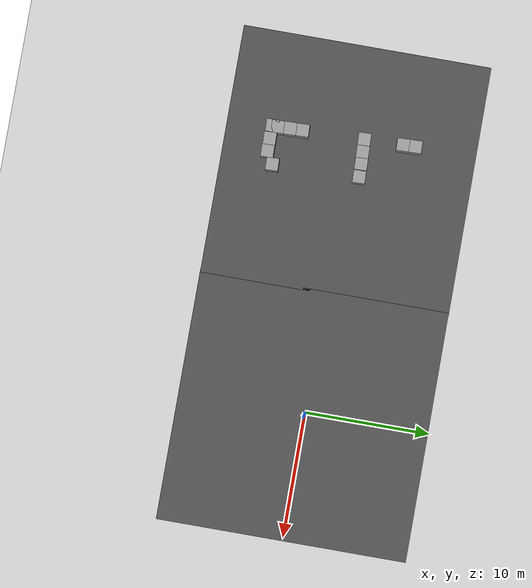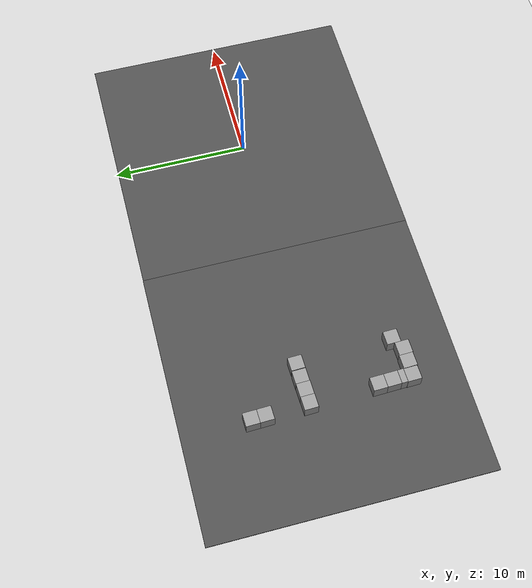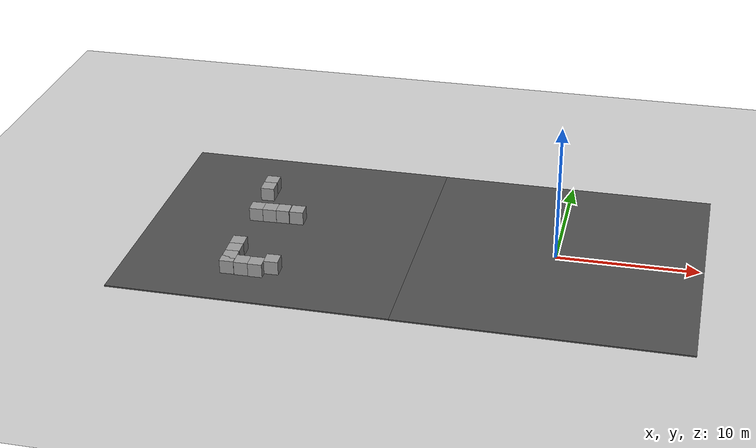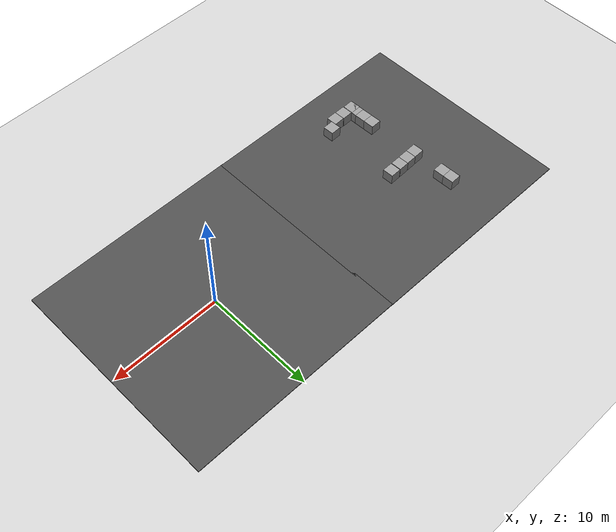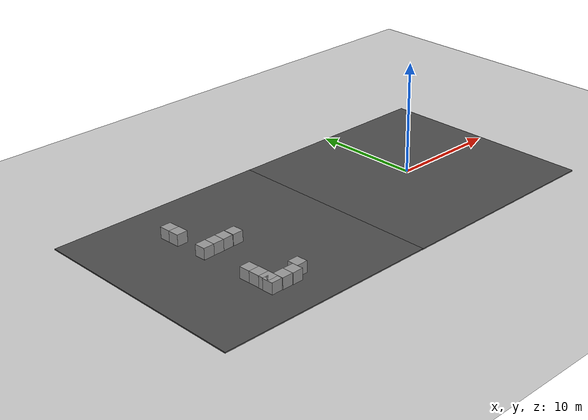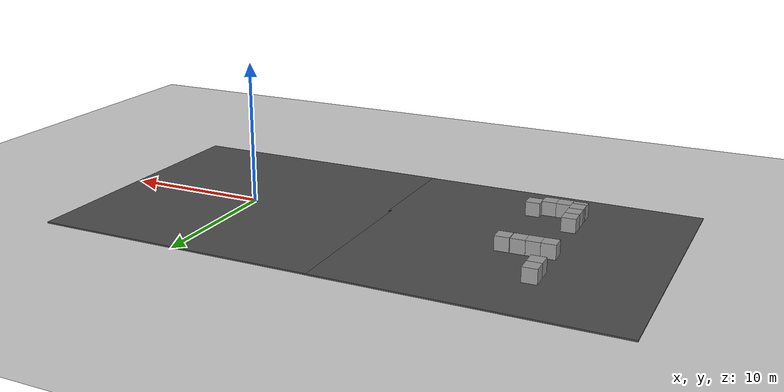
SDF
<sdf version="1.6">
 <world name="default">
  <model name="ground_plane">
   <static>1</static>
   <link name="link">
    <collision name="collision">
     <geometry><plane><normal>0 0 1</normal><size>100 100</size></plane></geometry>
     <surface><friction><ode><mu>100</mu><mu2>50</mu2></ode></friction></surface>
    </collision>
    <visual name="visual">
     <cast_shadows>0</cast_shadows>
     <geometry><plane><normal>0 0 1</normal><size>100 100</size></plane></geometry>
     <material>
      <script><uri>file://media/materials/scripts/gazebo.material</uri><name>Gazebo/Grey</name></script>
     </material>
    </visual>
    <velocity_decay><linear>0</linear><angular>0</angular></velocity_decay>
   </link>
  </model>
  <model name="asphalt_plane">
   <static>1</static>
   <link name="link">
    <collision name="collision"><geometry><box><size>20 20 0.1</size></box></geometry></collision>
    <visual name="visual">
     <cast_shadows>0</cast_shadows>
     <geometry><box><size>20 20 0.1</size></box></geometry>
     <material>
      <script>
       <uri>model://asphalt_plane/materials/scripts</uri>
       <uri>model://asphalt_plane/materials/textures</uri>
       <name>vrc/asphalt</name>
      </script>
     </material>
    </visual>
    <velocity_decay><linear>0</linear><angular>0</angular></velocity_decay>
   </link>
   <pose>0.276446 -0.119478 0 0 -0 0</pose>
  </model>
  <model name="asphalt_plane_clone">
   <static>1</static>
   <link name="link">
    <collision name="collision"><geometry><box><size>20 20 0.1</size></box></geometry></collision>
    <visual name="visual">
     <cast_shadows>0</cast_shadows>
     <geometry><box><size>20 20 0.1</size></box></geometry>
     <material>
      <script>
       <uri>model://asphalt_plane/materials/scripts</uri>
       <uri>model://asphalt_plane/materials/textures</uri>
       <name>vrc/asphalt</name>
      </script>
     </material>
    </visual>
    <velocity_decay><linear>0</linear><angular>0</angular></velocity_decay>
   </link>
   <pose>-19.5368 -0.102889 0 0 -0 0</pose>
  </model>
  <model name="maze">
   <link name="link">
    <inertial>
     <mass>10</mass>
     <inertia>
      <ixx>0.166667</ixx>
      <ixy>0</ixy>
      <ixz>0</ixz>
      <iyy>0.166667</iyy>
      <iyz>0</iyz>
      <izz>0.166667</izz>
     </inertia>
    </inertial>
    <visual name="visual">
     <geometry><box><size>1 1 1</size></box></geometry>
     <material>
      <script><name>Gazebo/Grey</name><uri>file://media/materials/scripts/gazebo.material</uri></script>
      <ambient>0.3 0.3 0.3 1</ambient>
      <diffuse>0.7 0.7 0.7 1</diffuse>
      <specular>0.01 0.01 0.01 1</specular>
      <emissive>0 0 0 1</emissive>
      <shader type="vertex"><normal_map>__default__</normal_map></shader>
     </material>
    </visual>
    <collision name="collision">
     <geometry><box><size>1 1 1</size></box></geometry>
     <surface>
      <friction>
       <ode><mu>1</mu><mu2>1</mu2><fdir1>0 0 0</fdir1><slip1>0</slip1><slip2>0</slip2></ode>
       <torsional>
        <coefficient>1</coefficient>
        <patch_radius>0</patch_radius>
        <surface_radius>0</surface_radius>
        <use_patch_radius>1</use_patch_radius>
        <ode><slip>0</slip></ode>
       </torsional>
      </friction>
      <bounce><restitution_coefficient>0</restitution_coefficient><threshold>1e+06</threshold></bounce>
      <contact>
       <collide_without_contact>0</collide_without_contact>
       <collide_without_contact_bitmask>1</collide_without_contact_bitmask>
       <collide_bitmask>1</collide_bitmask>
       <ode>
        <soft_cfm>0</soft_cfm>
        <soft_erp>0.2</soft_erp>
        <kp>1e+13</kp>
        <kd>1</kd>
        <max_vel>0.01</max_vel>
        <min_depth>0</min_depth>
       </ode>
       <bullet>
        <split_impulse>1</split_impulse>
        <split_impulse_penetration_threshold>-0.01</split_impulse_penetration_threshold>
        <soft_cfm>0</soft_cfm>
        <soft_erp>0.2</soft_erp>
        <kp>1e+13</kp>
        <kd>1</kd>
       </bullet>
      </contact>
     </surface>
    </collision>
   </link>
   <link name="link_clone_0">
    <pose>0.025298 0.43991 0 0 -0 0</pose>
    <inertial>
     <mass>10</mass>
     <inertia>
      <ixx>0.166667</ixx>
      <ixy>0</ixy>
      <ixz>0</ixz>
      <iyy>0.166667</iyy>
      <iyz>0</iyz>
      <izz>0.166667</izz>
     </inertia>
    </inertial>
    <visual name="visual">
     <geometry><box><size>1 1 1</size></box></geometry>
     <material>
      <script><name>Gazebo/Grey</name><uri>file://media/materials/scripts/gazebo.material</uri></script>
      <ambient>0.3 0.3 0.3 1</ambient>
      <diffuse>0.7 0.7 0.7 1</diffuse>
      <specular>0.01 0.01 0.01 1</specular>
      <emissive>0 0 0 1</emissive>
      <shader type="vertex"><normal_map>__default__</normal_map></shader>
     </material>
    </visual>
    <collision name="collision">
     <geometry><box><size>1 1 1</size></box></geometry>
     <surface>
      <friction>
       <ode><mu>1</mu><mu2>1</mu2><fdir1>0 0 0</fdir1><slip1>0</slip1><slip2>0</slip2></ode>
       <torsional>
        <coefficient>1</coefficient>
        <patch_radius>0</patch_radius>
        <surface_radius>0</surface_radius>
        <use_patch_radius>1</use_patch_radius>
        <ode><slip>0</slip></ode>
       </torsional>
      </friction>
      <bounce><restitution_coefficient>0</restitution_coefficient><threshold>1e+06</threshold></bounce>
      <contact>
       <collide_without_contact>0</collide_without_contact>
       <collide_without_contact_bitmask>1</collide_without_contact_bitmask>
       <collide_bitmask>1</collide_bitmask>
       <ode>
        <soft_cfm>0</soft_cfm>
        <soft_erp>0.2</soft_erp>
        <kp>1e+13</kp>
        <kd>1</kd>
        <max_vel>0.01</max_vel>
        <min_depth>0</min_depth>
       </ode>
       <bullet>
        <split_impulse>1</split_impulse>
        <split_impulse_penetration_threshold>-0.01</split_impulse_penetration_threshold>
        <soft_cfm>0</soft_cfm>
        <soft_erp>0.2</soft_erp>
        <kp>1e+13</kp>
        <kd>1</kd>
       </bullet>
      </contact>
     </surface>
    </collision>
   </link>
   <link name="link_clone_0_clone">
    <pose>1.0253 -0.048934 -0 0 -0 0</pose>
    <inertial>
     <mass>10</mass>
     <inertia>
      <ixx>0.166667</ixx>
      <ixy>0</ixy>
      <ixz>0</ixz>
      <iyy>0.166667</iyy>
      <iyz>0</iyz>
      <izz>0.166667</izz>
     </inertia>
    </inertial>
    <visual name="visual">
     <geometry><box><size>1 1 1</size></box></geometry>
     <material>
      <script><name>Gazebo/Grey</name><uri>file://media/materials/scripts/gazebo.material</uri></script>
      <ambient>0.3 0.3 0.3 1</ambient>
      <diffuse>0.7 0.7 0.7 1</diffuse>
      <specular>0.01 0.01 0.01 1</specular>
      <emissive>0 0 0 1</emissive>
      <shader type="vertex"><normal_map>__default__</normal_map></shader>
     </material>
    </visual>
    <collision name="collision">
     <geometry><box><size>1 1 1</size></box></geometry>
     <surface>
      <friction>
       <ode><mu>1</mu><mu2>1</mu2><fdir1>0 0 0</fdir1><slip1>0</slip1><slip2>0</slip2></ode>
       <torsional>
        <coefficient>1</coefficient>
        <patch_radius>0</patch_radius>
        <surface_radius>0</surface_radius>
        <use_patch_radius>1</use_patch_radius>
        <ode><slip>0</slip></ode>
       </torsional>
      </friction>
      <bounce><restitution_coefficient>0</restitution_coefficient><threshold>1e+06</threshold></bounce>
      <contact>
       <collide_without_contact>0</collide_without_contact>
       <collide_without_contact_bitmask>1</collide_without_contact_bitmask>
       <collide_bitmask>1</collide_bitmask>
       <ode>
        <soft_cfm>0</soft_cfm>
        <soft_erp>0.2</soft_erp>
        <kp>1e+13</kp>
        <kd>1</kd>
        <max_vel>0.01</max_vel>
        <min_depth>0</min_depth>
       </ode>
       <bullet>
        <split_impulse>1</split_impulse>
        <split_impulse_penetration_threshold>-0.01</split_impulse_penetration_threshold>
        <soft_cfm>0</soft_cfm>
        <soft_erp>0.2</soft_erp>
        <kp>1e+13</kp>
        <kd>1</kd>
       </bullet>
      </contact>
     </surface>
    </collision>
   </link>
   <link name="link_clone_0_clone_0">
    <pose>2.0253 -0.083056 0 0 -0 0</pose>
    <inertial>
     <mass>10</mass>
     <inertia>
      <ixx>0.166667</ixx>
      <ixy>0</ixy>
      <ixz>0</ixz>
      <iyy>0.166667</iyy>
      <iyz>0</iyz>
      <izz>0.166667</izz>
     </inertia>
    </inertial>
    <visual name="visual">
     <geometry><box><size>1 1 1</size></box></geometry>
     <material>
      <script><name>Gazebo/Grey</name><uri>file://media/materials/scripts/gazebo.material</uri></script>
      <ambient>0.3 0.3 0.3 1</ambient>
      <diffuse>0.7 0.7 0.7 1</diffuse>
      <specular>0.01 0.01 0.01 1</specular>
      <emissive>0 0 0 1</emissive>
      <shader type="vertex"><normal_map>__default__</normal_map></shader>
     </material>
    </visual>
    <collision name="collision">
     <geometry><box><size>1 1 1</size></box></geometry>
     <surface>
      <friction>
       <ode><mu>1</mu><mu2>1</mu2><fdir1>0 0 0</fdir1><slip1>0</slip1><slip2>0</slip2></ode>
       <torsional>
        <coefficient>1</coefficient>
        <patch_radius>0</patch_radius>
        <surface_radius>0</surface_radius>
        <use_patch_radius>1</use_patch_radius>
        <ode><slip>0</slip></ode>
       </torsional>
      </friction>
      <bounce><restitution_coefficient>0</restitution_coefficient><threshold>1e+06</threshold></bounce>
      <contact>
       <collide_without_contact>0</collide_without_contact>
       <collide_without_contact_bitmask>1</collide_without_contact_bitmask>
       <collide_bitmask>1</collide_bitmask>
       <ode>
        <soft_cfm>0</soft_cfm>
        <soft_erp>0.2</soft_erp>
        <kp>1e+13</kp>
        <kd>1</kd>
        <max_vel>0.01</max_vel>
        <min_depth>0</min_depth>
       </ode>
       <bullet>
        <split_impulse>1</split_impulse>
        <split_impulse_penetration_threshold>-0.01</split_impulse_penetration_threshold>
        <soft_cfm>0</soft_cfm>
        <soft_erp>0.2</soft_erp>
        <kp>1e+13</kp>
        <kd>1</kd>
       </bullet>
      </contact>
     </surface>
    </collision>
   </link>
   <link name="link_clone_0_clone_1">
    <pose>3.0253 0.43991 -0 0 -0 0</pose>
    <inertial>
     <mass>10</mass>
     <inertia>
      <ixx>0.166667</ixx>
      <ixy>0</ixy>
      <ixz>0</ixz>
      <iyy>0.166667</iyy>
      <iyz>0</iyz>
      <izz>0.166667</izz>
     </inertia>
    </inertial>
    <visual name="visual">
     <geometry><box><size>1 1 1</size></box></geometry>
     <material>
      <script><name>Gazebo/Grey</name><uri>file://media/materials/scripts/gazebo.material</uri></script>
      <ambient>0.3 0.3 0.3 1</ambient>
      <diffuse>0.7 0.7 0.7 1</diffuse>
      <specular>0.01 0.01 0.01 1</specular>
      <emissive>0 0 0 1</emissive>
      <shader type="vertex"><normal_map>__default__</normal_map></shader>
     </material>
    </visual>
    <collision name="collision">
     <geometry><box><size>1 1 1</size></box></geometry>
     <surface>
      <friction>
       <ode><mu>1</mu><mu2>1</mu2><fdir1>0 0 0</fdir1><slip1>0</slip1><slip2>0</slip2></ode>
       <torsional>
        <coefficient>1</coefficient>
        <patch_radius>0</patch_radius>
        <surface_radius>0</surface_radius>
        <use_patch_radius>1</use_patch_radius>
        <ode><slip>0</slip></ode>
       </torsional>
      </friction>
      <bounce><restitution_coefficient>0</restitution_coefficient><threshold>1e+06</threshold></bounce>
      <contact>
       <collide_without_contact>0</collide_without_contact>
       <collide_without_contact_bitmask>1</collide_without_contact_bitmask>
       <collide_bitmask>1</collide_bitmask>
       <ode>
        <soft_cfm>0</soft_cfm>
        <soft_erp>0.2</soft_erp>
        <kp>1e+13</kp>
        <kd>1</kd>
        <max_vel>0.01</max_vel>
        <min_depth>0</min_depth>
       </ode>
       <bullet>
        <split_impulse>1</split_impulse>
        <split_impulse_penetration_threshold>-0.01</split_impulse_penetration_threshold>
        <soft_cfm>0</soft_cfm>
        <soft_erp>0.2</soft_erp>
        <kp>1e+13</kp>
        <kd>1</kd>
       </bullet>
      </contact>
     </surface>
    </collision>
   </link>
   <link name="link_clone_0_clone_2">
    <pose>1.0253 7.36499 0 0 -0 0</pose>
    <inertial>
     <mass>10</mass>
     <inertia>
      <ixx>0.166667</ixx>
      <ixy>0</ixy>
      <ixz>0</ixz>
      <iyy>0.166667</iyy>
      <iyz>0</iyz>
      <izz>0.166667</izz>
     </inertia>
    </inertial>
    <visual name="visual">
     <geometry><box><size>1 1 1</size></box></geometry>
     <material>
      <script><name>Gazebo/Grey</name><uri>file://media/materials/scripts/gazebo.material</uri></script>
      <ambient>0.3 0.3 0.3 1</ambient>
      <diffuse>0.7 0.7 0.7 1</diffuse>
      <specular>0.01 0.01 0.01 1</specular>
      <emissive>0 0 0 1</emissive>
      <shader type="vertex"><normal_map>__default__</normal_map></shader>
     </material>
    </visual>
    <collision name="collision">
     <geometry><box><size>1 1 1</size></box></geometry>
     <surface>
      <friction>
       <ode><mu>1</mu><mu2>1</mu2><fdir1>0 0 0</fdir1><slip1>0</slip1><slip2>0</slip2></ode>
       <torsional>
        <coefficient>1</coefficient>
        <patch_radius>0</patch_radius>
        <surface_radius>0</surface_radius>
        <use_patch_radius>1</use_patch_radius>
        <ode><slip>0</slip></ode>
       </torsional>
      </friction>
      <bounce><restitution_coefficient>0</restitution_coefficient><threshold>1e+06</threshold></bounce>
      <contact>
       <collide_without_contact>0</collide_without_contact>
       <collide_without_contact_bitmask>1</collide_without_contact_bitmask>
       <collide_bitmask>1</collide_bitmask>
       <ode>
        <soft_cfm>0</soft_cfm>
        <soft_erp>0.2</soft_erp>
        <kp>1e+13</kp>
        <kd>1</kd>
        <max_vel>0.01</max_vel>
        <min_depth>0</min_depth>
       </ode>
       <bullet>
        <split_impulse>1</split_impulse>
        <split_impulse_penetration_threshold>-0.01</split_impulse_penetration_threshold>
        <soft_cfm>0</soft_cfm>
        <soft_erp>0.2</soft_erp>
        <kp>1e+13</kp>
        <kd>1</kd>
       </bullet>
      </contact>
     </surface>
    </collision>
   </link>
   <link name="link_clone_0_clone_3">
    <pose>1.98482 7.37641 -1.8e-05 0 -0 0</pose>
    <inertial>
     <mass>10</mass>
     <inertia>
      <ixx>0.166667</ixx>
      <ixy>0</ixy>
      <ixz>0</ixz>
      <iyy>0.166667</iyy>
      <iyz>0</iyz>
      <izz>0.166667</izz>
     </inertia>
    </inertial>
    <visual name="visual">
     <geometry><box><size>1 1 1</size></box></geometry>
     <material>
      <script><name>Gazebo/Grey</name><uri>file://media/materials/scripts/gazebo.material</uri></script>
      <ambient>0.3 0.3 0.3 1</ambient>
      <diffuse>0.7 0.7 0.7 1</diffuse>
      <specular>0.01 0.01 0.01 1</specular>
      <emissive>0 0 0 1</emissive>
      <shader type="vertex"><normal_map>__default__</normal_map></shader>
     </material>
    </visual>
    <collision name="collision">
     <geometry><box><size>1 1 1</size></box></geometry>
     <surface>
      <friction>
       <ode><mu>1</mu><mu2>1</mu2><fdir1>0 0 0</fdir1><slip1>0</slip1><slip2>0</slip2></ode>
       <torsional>
        <coefficient>1</coefficient>
        <patch_radius>0</patch_radius>
        <surface_radius>0</surface_radius>
        <use_patch_radius>1</use_patch_radius>
        <ode><slip>0</slip></ode>
       </torsional>
      </friction>
      <bounce><restitution_coefficient>0</restitution_coefficient><threshold>1e+06</threshold></bounce>
      <contact>
       <collide_without_contact>0</collide_without_contact>
       <collide_without_contact_bitmask>1</collide_without_contact_bitmask>
       <collide_bitmask>1</collide_bitmask>
       <ode>
        <soft_cfm>0</soft_cfm>
        <soft_erp>0.2</soft_erp>
        <kp>1e+13</kp>
        <kd>1</kd>
        <max_vel>0.01</max_vel>
        <min_depth>0</min_depth>
       </ode>
       <bullet>
        <split_impulse>1</split_impulse>
        <split_impulse_penetration_threshold>-0.01</split_impulse_penetration_threshold>
        <soft_cfm>0</soft_cfm>
        <soft_erp>0.2</soft_erp>
        <kp>1e+13</kp>
        <kd>1</kd>
       </bullet>
      </contact>
     </surface>
    </collision>
   </link>
   <link name="link_clone_0_clone_4">
    <pose>3.0253 7.37453 0 0 -0 0</pose>
    <inertial>
     <mass>10</mass>
     <inertia>
      <ixx>0.166667</ixx>
      <ixy>0</ixy>
      <ixz>0</ixz>
      <iyy>0.166667</iyy>
      <iyz>0</iyz>
      <izz>0.166667</izz>
     </inertia>
    </inertial>
    <visual name="visual">
     <geometry><box><size>1 1 1</size></box></geometry>
     <material>
      <script><name>Gazebo/Grey</name><uri>file://media/materials/scripts/gazebo.material</uri></script>
      <ambient>0.3 0.3 0.3 1</ambient>
      <diffuse>0.7 0.7 0.7 1</diffuse>
      <specular>0.01 0.01 0.01 1</specular>
      <emissive>0 0 0 1</emissive>
      <shader type="vertex"><normal_map>__default__</normal_map></shader>
     </material>
    </visual>
    <collision name="collision">
     <geometry><box><size>1 1 1</size></box></geometry>
     <surface>
      <friction>
       <ode><mu>1</mu><mu2>1</mu2><fdir1>0 0 0</fdir1><slip1>0</slip1><slip2>0</slip2></ode>
       <torsional>
        <coefficient>1</coefficient>
        <patch_radius>0</patch_radius>
        <surface_radius>0</surface_radius>
        <use_patch_radius>1</use_patch_radius>
        <ode><slip>0</slip></ode>
       </torsional>
      </friction>
      <bounce><restitution_coefficient>0</restitution_coefficient><threshold>1e+06</threshold></bounce>
      <contact>
       <collide_without_contact>0</collide_without_contact>
       <collide_without_contact_bitmask>1</collide_without_contact_bitmask>
       <collide_bitmask>1</collide_bitmask>
       <ode>
        <soft_cfm>0</soft_cfm>
        <soft_erp>0.2</soft_erp>
        <kp>1e+13</kp>
        <kd>1</kd>
        <max_vel>0.01</max_vel>
        <min_depth>0</min_depth>
       </ode>
       <bullet>
        <split_impulse>1</split_impulse>
        <split_impulse_penetration_threshold>-0.01</split_impulse_penetration_threshold>
        <soft_cfm>0</soft_cfm>
        <soft_erp>0.2</soft_erp>
        <kp>1e+13</kp>
        <kd>1</kd>
       </bullet>
      </contact>
     </surface>
    </collision>
   </link>
   <link name="link_clone_1">
    <pose>0.0253 1.43991 0 0 -0 0</pose>
    <inertial>
     <mass>10</mass>
     <inertia>
      <ixx>0.166667</ixx>
      <ixy>0</ixy>
      <ixz>0</ixz>
      <iyy>0.166667</iyy>
      <iyz>0</iyz>
      <izz>0.166667</izz>
     </inertia>
    </inertial>
    <visual name="visual">
     <geometry><box><size>1 1 1</size></box></geometry>
     <material>
      <script><name>Gazebo/Grey</name><uri>file://media/materials/scripts/gazebo.material</uri></script>
      <ambient>0.3 0.3 0.3 1</ambient>
      <diffuse>0.7 0.7 0.7 1</diffuse>
      <specular>0.01 0.01 0.01 1</specular>
      <emissive>0 0 0 1</emissive>
      <shader type="vertex"><normal_map>__default__</normal_map></shader>
     </material>
    </visual>
    <collision name="collision">
     <geometry><box><size>1 1 1</size></box></geometry>
     <surface>
      <friction>
       <ode><mu>1</mu><mu2>1</mu2><fdir1>0 0 0</fdir1><slip1>0</slip1><slip2>0</slip2></ode>
       <torsional>
        <coefficient>1</coefficient>
        <patch_radius>0</patch_radius>
        <surface_radius>0</surface_radius>
        <use_patch_radius>1</use_patch_radius>
        <ode><slip>0</slip></ode>
       </torsional>
      </friction>
      <bounce><restitution_coefficient>0</restitution_coefficient><threshold>1e+06</threshold></bounce>
      <contact>
       <collide_without_contact>0</collide_without_contact>
       <collide_without_contact_bitmask>1</collide_without_contact_bitmask>
       <collide_bitmask>1</collide_bitmask>
       <ode>
        <soft_cfm>0</soft_cfm>
        <soft_erp>0.2</soft_erp>
        <kp>1e+13</kp>
        <kd>1</kd>
        <max_vel>0.01</max_vel>
        <min_depth>0</min_depth>
       </ode>
       <bullet>
        <split_impulse>1</split_impulse>
        <split_impulse_penetration_threshold>-0.01</split_impulse_penetration_threshold>
        <soft_cfm>0</soft_cfm>
        <soft_erp>0.2</soft_erp>
        <kp>1e+13</kp>
        <kd>1</kd>
       </bullet>
      </contact>
     </surface>
    </collision>
   </link>
   <link name="link_clone_2">
    <pose>0.025299 2.43991 0 0 -0 0</pose>
    <inertial>
     <mass>10</mass>
     <inertia>
      <ixx>0.166667</ixx>
      <ixy>0</ixy>
      <ixz>0</ixz>
      <iyy>0.166667</iyy>
      <iyz>0</iyz>
      <izz>0.166667</izz>
     </inertia>
    </inertial>
    <visual name="visual">
     <geometry><box><size>1 1 1</size></box></geometry>
     <material>
      <script><name>Gazebo/Grey</name><uri>file://media/materials/scripts/gazebo.material</uri></script>
      <ambient>0.3 0.3 0.3 1</ambient>
      <diffuse>0.7 0.7 0.7 1</diffuse>
      <specular>0.01 0.01 0.01 1</specular>
      <emissive>0 0 0 1</emissive>
      <shader type="vertex"><normal_map>__default__</normal_map></shader>
     </material>
    </visual>
    <collision name="collision">
     <geometry><box><size>1 1 1</size></box></geometry>
     <surface>
      <friction>
       <ode><mu>1</mu><mu2>1</mu2><fdir1>0 0 0</fdir1><slip1>0</slip1><slip2>0</slip2></ode>
       <torsional>
        <coefficient>1</coefficient>
        <patch_radius>0</patch_radius>
        <surface_radius>0</surface_radius>
        <use_patch_radius>1</use_patch_radius>
        <ode><slip>0</slip></ode>
       </torsional>
      </friction>
      <bounce><restitution_coefficient>0</restitution_coefficient><threshold>1e+06</threshold></bounce>
      <contact>
       <collide_without_contact>0</collide_without_contact>
       <collide_without_contact_bitmask>1</collide_without_contact_bitmask>
       <collide_bitmask>1</collide_bitmask>
       <ode>
        <soft_cfm>0</soft_cfm>
        <soft_erp>0.2</soft_erp>
        <kp>1e+13</kp>
        <kd>1</kd>
        <max_vel>0.01</max_vel>
        <min_depth>0</min_depth>
       </ode>
       <bullet>
        <split_impulse>1</split_impulse>
        <split_impulse_penetration_threshold>-0.01</split_impulse_penetration_threshold>
        <soft_cfm>0</soft_cfm>
        <soft_erp>0.2</soft_erp>
        <kp>1e+13</kp>
        <kd>1</kd>
       </bullet>
      </contact>
     </surface>
    </collision>
   </link>
   <link name="link_clone_46">
    <pose>0.025299 11.4399 0 0 -0 0</pose>
    <inertial>
     <mass>10</mass>
     <inertia>
      <ixx>0.166667</ixx>
      <ixy>0</ixy>
      <ixz>0</ixz>
      <iyy>0.166667</iyy>
      <iyz>0</iyz>
      <izz>0.166667</izz>
     </inertia>
    </inertial>
    <visual name="visual">
     <geometry><box><size>1 1 1</size></box></geometry>
     <material>
      <script><name>Gazebo/Grey</name><uri>file://media/materials/scripts/gazebo.material</uri></script>
      <ambient>0.3 0.3 0.3 1</ambient>
      <diffuse>0.7 0.7 0.7 1</diffuse>
      <specular>0.01 0.01 0.01 1</specular>
      <emissive>0 0 0 1</emissive>
      <shader type="vertex"><normal_map>__default__</normal_map></shader>
     </material>
    </visual>
    <collision name="collision">
     <geometry><box><size>1 1 1</size></box></geometry>
     <surface>
      <friction>
       <ode><mu>1</mu><mu2>1</mu2><fdir1>0 0 0</fdir1><slip1>0</slip1><slip2>0</slip2></ode>
       <torsional>
        <coefficient>1</coefficient>
        <patch_radius>0</patch_radius>
        <surface_radius>0</surface_radius>
        <use_patch_radius>1</use_patch_radius>
        <ode><slip>0</slip></ode>
       </torsional>
      </friction>
      <bounce><restitution_coefficient>0</restitution_coefficient><threshold>1e+06</threshold></bounce>
      <contact>
       <collide_without_contact>0</collide_without_contact>
       <collide_without_contact_bitmask>1</collide_without_contact_bitmask>
       <collide_bitmask>1</collide_bitmask>
       <ode>
        <soft_cfm>0</soft_cfm>
        <soft_erp>0.2</soft_erp>
        <kp>1e+13</kp>
        <kd>1</kd>
        <max_vel>0.01</max_vel>
        <min_depth>0</min_depth>
       </ode>
       <bullet>
        <split_impulse>1</split_impulse>
        <split_impulse_penetration_threshold>-0.01</split_impulse_penetration_threshold>
        <soft_cfm>0</soft_cfm>
        <soft_erp>0.2</soft_erp>
        <kp>1e+13</kp>
        <kd>1</kd>
       </bullet>
      </contact>
     </surface>
    </collision>
   </link>
   <link name="link_clone_47">
    <pose>0.025299 10.4399 0 0 -0 0</pose>
    <inertial>
     <mass>10</mass>
     <inertia>
      <ixx>0.166667</ixx>
      <ixy>0</ixy>
      <ixz>0</ixz>
      <iyy>0.166667</iyy>
      <iyz>0</iyz>
      <izz>0.166667</izz>
     </inertia>
    </inertial>
    <visual name="visual">
     <geometry><box><size>1 1 1</size></box></geometry>
     <material>
      <script><name>Gazebo/Grey</name><uri>file://media/materials/scripts/gazebo.material</uri></script>
      <ambient>0.3 0.3 0.3 1</ambient>
      <diffuse>0.7 0.7 0.7 1</diffuse>
      <specular>0.01 0.01 0.01 1</specular>
      <emissive>0 0 0 1</emissive>
      <shader type="vertex"><normal_map>__default__</normal_map></shader>
     </material>
    </visual>
    <collision name="collision">
     <geometry><box><size>1 1 1</size></box></geometry>
     <surface>
      <friction>
       <ode><mu>1</mu><mu2>1</mu2><fdir1>0 0 0</fdir1><slip1>0</slip1><slip2>0</slip2></ode>
       <torsional>
        <coefficient>1</coefficient>
        <patch_radius>0</patch_radius>
        <surface_radius>0</surface_radius>
        <use_patch_radius>1</use_patch_radius>
        <ode><slip>0</slip></ode>
       </torsional>
      </friction>
      <bounce><restitution_coefficient>0</restitution_coefficient><threshold>1e+06</threshold></bounce>
      <contact>
       <collide_without_contact>0</collide_without_contact>
       <collide_without_contact_bitmask>1</collide_without_contact_bitmask>
       <collide_bitmask>1</collide_bitmask>
       <ode>
        <soft_cfm>0</soft_cfm>
        <soft_erp>0.2</soft_erp>
        <kp>1e+13</kp>
        <kd>1</kd>
        <max_vel>0.01</max_vel>
        <min_depth>0</min_depth>
       </ode>
       <bullet>
        <split_impulse>1</split_impulse>
        <split_impulse_penetration_threshold>-0.01</split_impulse_penetration_threshold>
        <soft_cfm>0</soft_cfm>
        <soft_erp>0.2</soft_erp>
        <kp>1e+13</kp>
        <kd>1</kd>
       </bullet>
      </contact>
     </surface>
    </collision>
   </link>
   <link name="link_clone_48">
    <pose>0.025298 7.35555 -0 0 -0 0</pose>
    <inertial>
     <mass>10</mass>
     <inertia>
      <ixx>0.166667</ixx>
      <ixy>0</ixy>
      <ixz>0</ixz>
      <iyy>0.166667</iyy>
      <iyz>0</iyz>
      <izz>0.166667</izz>
     </inertia>
    </inertial>
    <visual name="visual">
     <geometry><box><size>1 1 1</size></box></geometry>
     <material>
      <script><name>Gazebo/Grey</name><uri>file://media/materials/scripts/gazebo.material</uri></script>
      <ambient>0.3 0.3 0.3 1</ambient>
      <diffuse>0.7 0.7 0.7 1</diffuse>
      <specular>0.01 0.01 0.01 1</specular>
      <emissive>0 0 0 1</emissive>
      <shader type="vertex"><normal_map>__default__</normal_map></shader>
     </material>
    </visual>
    <collision name="collision">
     <geometry><box><size>1 1 1</size></box></geometry>
     <surface>
      <friction>
       <ode><mu>1</mu><mu2>1</mu2><fdir1>0 0 0</fdir1><slip1>0</slip1><slip2>0</slip2></ode>
       <torsional>
        <coefficient>1</coefficient>
        <patch_radius>0</patch_radius>
        <surface_radius>0</surface_radius>
        <use_patch_radius>1</use_patch_radius>
        <ode><slip>0</slip></ode>
       </torsional>
      </friction>
      <bounce><restitution_coefficient>0</restitution_coefficient><threshold>1e+06</threshold></bounce>
      <contact>
       <collide_without_contact>0</collide_without_contact>
       <collide_without_contact_bitmask>1</collide_without_contact_bitmask>
       <collide_bitmask>1</collide_bitmask>
       <ode>
        <soft_cfm>0</soft_cfm>
        <soft_erp>0.2</soft_erp>
        <kp>1e+13</kp>
        <kd>1</kd>
        <max_vel>0.01</max_vel>
        <min_depth>0</min_depth>
       </ode>
       <bullet>
        <split_impulse>1</split_impulse>
        <split_impulse_penetration_threshold>-0.01</split_impulse_penetration_threshold>
        <soft_cfm>0</soft_cfm>
        <soft_erp>0.2</soft_erp>
        <kp>1e+13</kp>
        <kd>1</kd>
       </bullet>
      </contact>
     </surface>
    </collision>
   </link>
   <static>0</static>
   <pose>-21.8827 -6.43764 0.549993 1e-06 7.4e-05 0.028554</pose>
  </model>
 </world>
</sdf>
